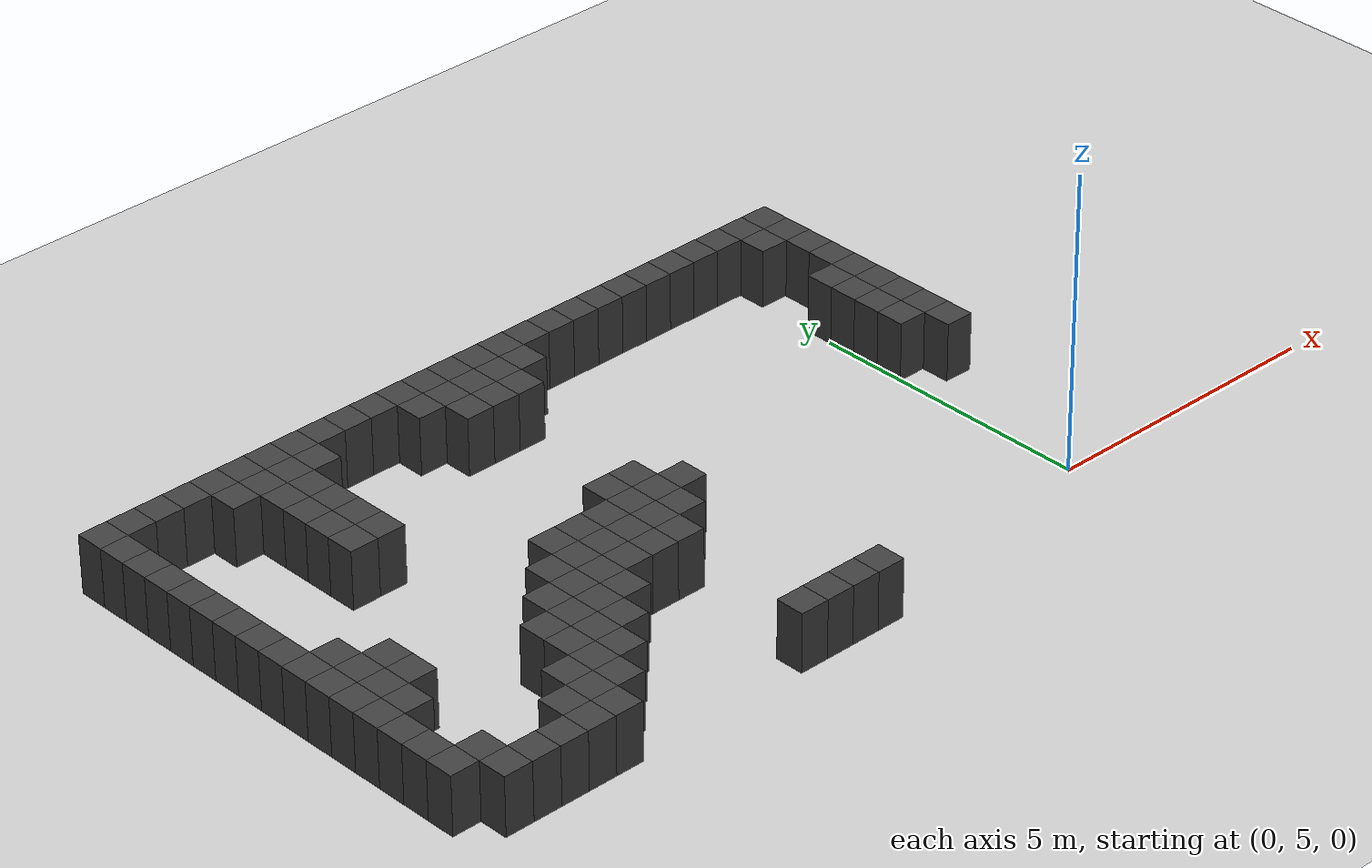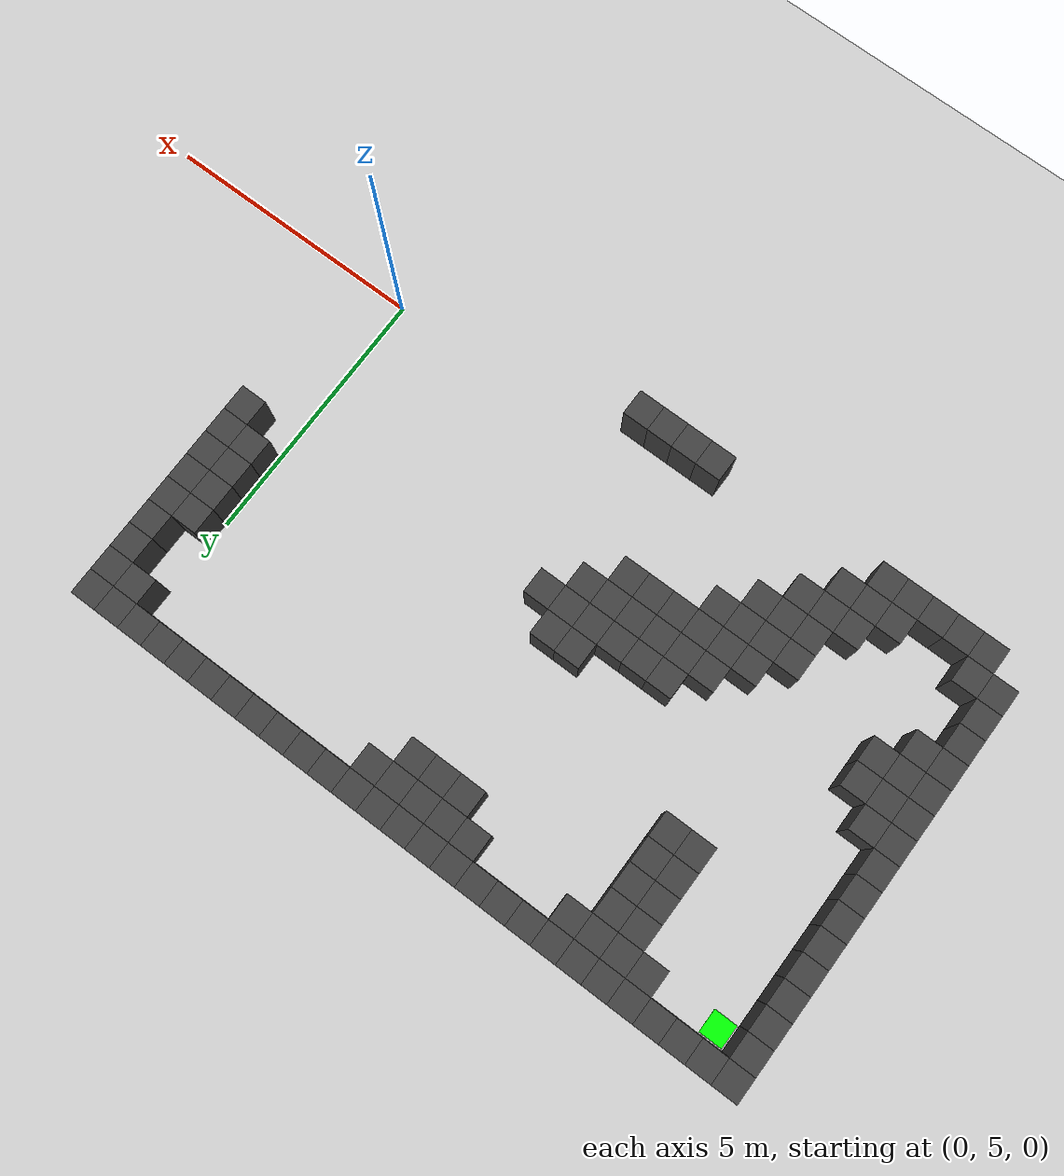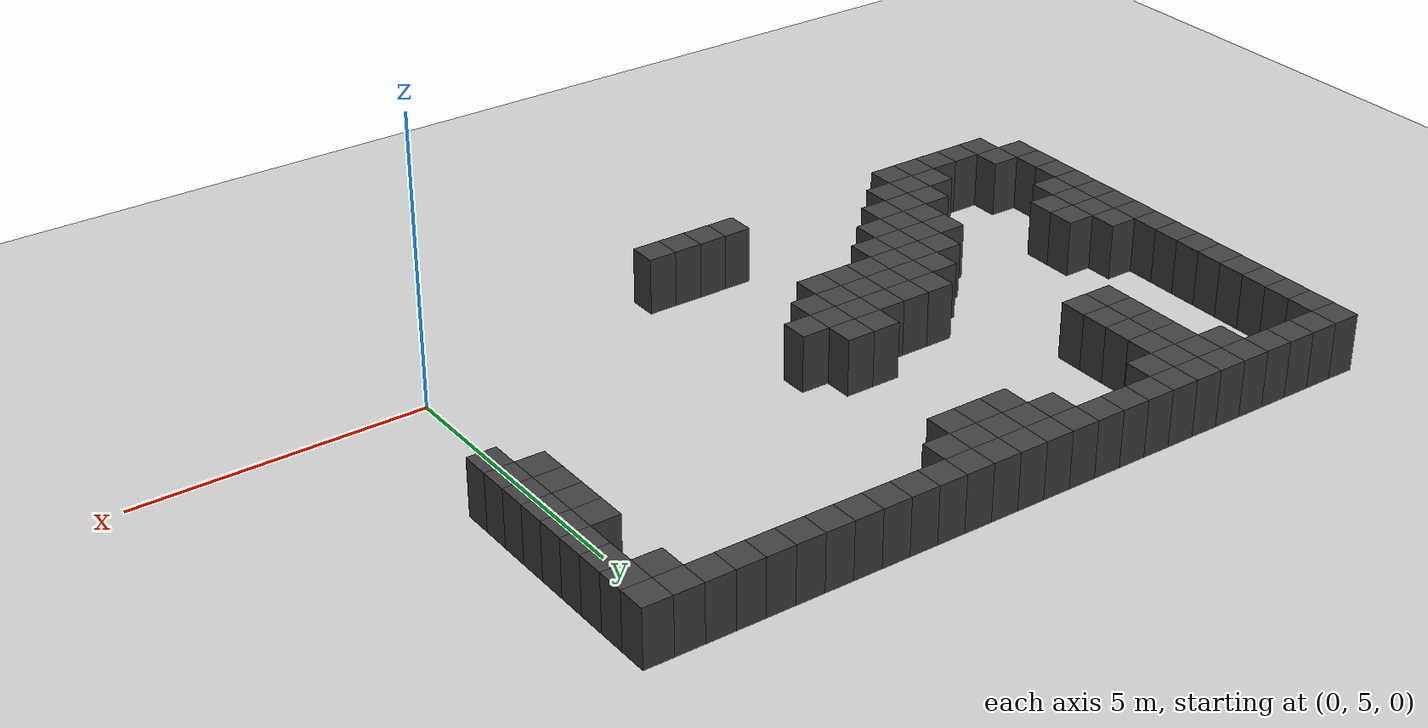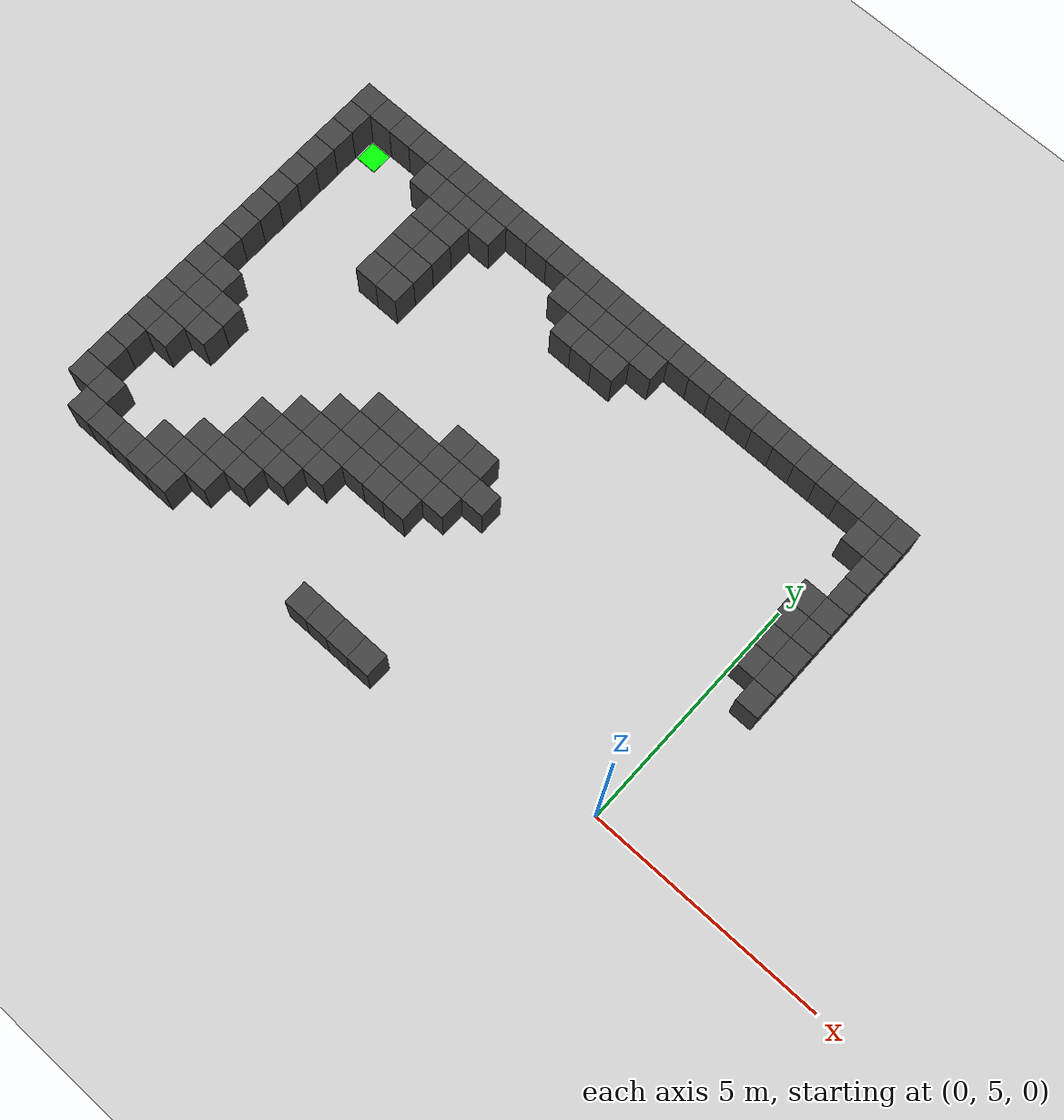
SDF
<sdf version="1.7">
 <world name="map_9687">
  <model name="ground_plane">
   <static>true</static>
   <link name="link">
    <collision name="collision">
     <geometry><plane><normal>0 0 1</normal><size>200 200</size></plane></geometry>
    </collision>
    <visual name="visual">
     <geometry><plane><normal>0 0 1</normal><size>200 200</size></plane></geometry>
     <material><ambient>0.8 0.8 0.8 1</ambient><diffuse>0.8 0.8 0.8 1</diffuse></material>
    </visual>
   </link>
  </model>
  <model name="maze_environment">
   <static>true</static>
   <link name="wall_0">
    <pose>-12.250 12.250 0.500 0 0 0</pose>
    <collision name="col"><geometry><box><size>0.5 0.5 1.0</size></box></geometry></collision>
    <visual name="vis">
     <geometry><box><size>0.5 0.5 1.0</size></box></geometry>
     <material><ambient>0.15 0.15 0.15 1</ambient><diffuse>0.25 0.25 0.25 1</diffuse></material>
    </visual>
   </link>
   <link name="wall_1">
    <pose>-11.750 12.250 0.500 0 0 0</pose>
    <collision name="col"><geometry><box><size>0.5 0.5 1.0</size></box></geometry></collision>
    <visual name="vis">
     <geometry><box><size>0.5 0.5 1.0</size></box></geometry>
     <material><ambient>0.15 0.15 0.15 1</ambient><diffuse>0.25 0.25 0.25 1</diffuse></material>
    </visual>
   </link>
   <link name="wall_2">
    <pose>-11.250 12.250 0.500 0 0 0</pose>
    <collision name="col"><geometry><box><size>0.5 0.5 1.0</size></box></geometry></collision>
    <visual name="vis">
     <geometry><box><size>0.5 0.5 1.0</size></box></geometry>
     <material><ambient>0.15 0.15 0.15 1</ambient><diffuse>0.25 0.25 0.25 1</diffuse></material>
    </visual>
   </link>
   <link name="wall_3">
    <pose>-10.750 12.250 0.500 0 0 0</pose>
    <collision name="col"><geometry><box><size>0.5 0.5 1.0</size></box></geometry></collision>
    <visual name="vis">
     <geometry><box><size>0.5 0.5 1.0</size></box></geometry>
     <material><ambient>0.15 0.15 0.15 1</ambient><diffuse>0.25 0.25 0.25 1</diffuse></material>
    </visual>
   </link>
   <link name="wall_4">
    <pose>-10.250 12.250 0.500 0 0 0</pose>
    <collision name="col"><geometry><box><size>0.5 0.5 1.0</size></box></geometry></collision>
    <visual name="vis">
     <geometry><box><size>0.5 0.5 1.0</size></box></geometry>
     <material><ambient>0.15 0.15 0.15 1</ambient><diffuse>0.25 0.25 0.25 1</diffuse></material>
    </visual>
   </link>
   <link name="wall_5">
    <pose>-9.750 12.250 0.500 0 0 0</pose>
    <collision name="col"><geometry><box><size>0.5 0.5 1.0</size></box></geometry></collision>
    <visual name="vis">
     <geometry><box><size>0.5 0.5 1.0</size></box></geometry>
     <material><ambient>0.15 0.15 0.15 1</ambient><diffuse>0.25 0.25 0.25 1</diffuse></material>
    </visual>
   </link>
   <link name="wall_6">
    <pose>-9.250 12.250 0.500 0 0 0</pose>
    <collision name="col"><geometry><box><size>0.5 0.5 1.0</size></box></geometry></collision>
    <visual name="vis">
     <geometry><box><size>0.5 0.5 1.0</size></box></geometry>
     <material><ambient>0.15 0.15 0.15 1</ambient><diffuse>0.25 0.25 0.25 1</diffuse></material>
    </visual>
   </link>
   <link name="wall_7">
    <pose>-8.750 12.250 0.500 0 0 0</pose>
    <collision name="col"><geometry><box><size>0.5 0.5 1.0</size></box></geometry></collision>
    <visual name="vis">
     <geometry><box><size>0.5 0.5 1.0</size></box></geometry>
     <material><ambient>0.15 0.15 0.15 1</ambient><diffuse>0.25 0.25 0.25 1</diffuse></material>
    </visual>
   </link>
   <link name="wall_8">
    <pose>-8.250 12.250 0.500 0 0 0</pose>
    <collision name="col"><geometry><box><size>0.5 0.5 1.0</size></box></geometry></collision>
    <visual name="vis">
     <geometry><box><size>0.5 0.5 1.0</size></box></geometry>
     <material><ambient>0.15 0.15 0.15 1</ambient><diffuse>0.25 0.25 0.25 1</diffuse></material>
    </visual>
   </link>
   <link name="wall_9">
    <pose>-7.750 12.250 0.500 0 0 0</pose>
    <collision name="col"><geometry><box><size>0.5 0.5 1.0</size></box></geometry></collision>
    <visual name="vis">
     <geometry><box><size>0.5 0.5 1.0</size></box></geometry>
     <material><ambient>0.15 0.15 0.15 1</ambient><diffuse>0.25 0.25 0.25 1</diffuse></material>
    </visual>
   </link>
   <link name="wall_10">
    <pose>-7.250 12.250 0.500 0 0 0</pose>
    <collision name="col"><geometry><box><size>0.5 0.5 1.0</size></box></geometry></collision>
    <visual name="vis">
     <geometry><box><size>0.5 0.5 1.0</size></box></geometry>
     <material><ambient>0.15 0.15 0.15 1</ambient><diffuse>0.25 0.25 0.25 1</diffuse></material>
    </visual>
   </link>
   <link name="wall_11">
    <pose>-6.750 12.250 0.500 0 0 0</pose>
    <collision name="col"><geometry><box><size>0.5 0.5 1.0</size></box></geometry></collision>
    <visual name="vis">
     <geometry><box><size>0.5 0.5 1.0</size></box></geometry>
     <material><ambient>0.15 0.15 0.15 1</ambient><diffuse>0.25 0.25 0.25 1</diffuse></material>
    </visual>
   </link>
   <link name="wall_12">
    <pose>-6.250 12.250 0.500 0 0 0</pose>
    <collision name="col"><geometry><box><size>0.5 0.5 1.0</size></box></geometry></collision>
    <visual name="vis">
     <geometry><box><size>0.5 0.5 1.0</size></box></geometry>
     <material><ambient>0.15 0.15 0.15 1</ambient><diffuse>0.25 0.25 0.25 1</diffuse></material>
    </visual>
   </link>
   <link name="wall_13">
    <pose>-5.750 12.250 0.500 0 0 0</pose>
    <collision name="col"><geometry><box><size>0.5 0.5 1.0</size></box></geometry></collision>
    <visual name="vis">
     <geometry><box><size>0.5 0.5 1.0</size></box></geometry>
     <material><ambient>0.15 0.15 0.15 1</ambient><diffuse>0.25 0.25 0.25 1</diffuse></material>
    </visual>
   </link>
   <link name="wall_14">
    <pose>-5.250 12.250 0.500 0 0 0</pose>
    <collision name="col"><geometry><box><size>0.5 0.5 1.0</size></box></geometry></collision>
    <visual name="vis">
     <geometry><box><size>0.5 0.5 1.0</size></box></geometry>
     <material><ambient>0.15 0.15 0.15 1</ambient><diffuse>0.25 0.25 0.25 1</diffuse></material>
    </visual>
   </link>
   <link name="wall_15">
    <pose>-4.750 12.250 0.500 0 0 0</pose>
    <collision name="col"><geometry><box><size>0.5 0.5 1.0</size></box></geometry></collision>
    <visual name="vis">
     <geometry><box><size>0.5 0.5 1.0</size></box></geometry>
     <material><ambient>0.15 0.15 0.15 1</ambient><diffuse>0.25 0.25 0.25 1</diffuse></material>
    </visual>
   </link>
   <link name="wall_16">
    <pose>-4.250 12.250 0.500 0 0 0</pose>
    <collision name="col"><geometry><box><size>0.5 0.5 1.0</size></box></geometry></collision>
    <visual name="vis">
     <geometry><box><size>0.5 0.5 1.0</size></box></geometry>
     <material><ambient>0.15 0.15 0.15 1</ambient><diffuse>0.25 0.25 0.25 1</diffuse></material>
    </visual>
   </link>
   <link name="wall_17">
    <pose>-3.750 12.250 0.500 0 0 0</pose>
    <collision name="col"><geometry><box><size>0.5 0.5 1.0</size></box></geometry></collision>
    <visual name="vis">
     <geometry><box><size>0.5 0.5 1.0</size></box></geometry>
     <material><ambient>0.15 0.15 0.15 1</ambient><diffuse>0.25 0.25 0.25 1</diffuse></material>
    </visual>
   </link>
   <link name="wall_18">
    <pose>-3.250 12.250 0.500 0 0 0</pose>
    <collision name="col"><geometry><box><size>0.5 0.5 1.0</size></box></geometry></collision>
    <visual name="vis">
     <geometry><box><size>0.5 0.5 1.0</size></box></geometry>
     <material><ambient>0.15 0.15 0.15 1</ambient><diffuse>0.25 0.25 0.25 1</diffuse></material>
    </visual>
   </link>
   <link name="wall_19">
    <pose>-2.750 12.250 0.500 0 0 0</pose>
    <collision name="col"><geometry><box><size>0.5 0.5 1.0</size></box></geometry></collision>
    <visual name="vis">
     <geometry><box><size>0.5 0.5 1.0</size></box></geometry>
     <material><ambient>0.15 0.15 0.15 1</ambient><diffuse>0.25 0.25 0.25 1</diffuse></material>
    </visual>
   </link>
   <link name="wall_20">
    <pose>-2.250 12.250 0.500 0 0 0</pose>
    <collision name="col"><geometry><box><size>0.5 0.5 1.0</size></box></geometry></collision>
    <visual name="vis">
     <geometry><box><size>0.5 0.5 1.0</size></box></geometry>
     <material><ambient>0.15 0.15 0.15 1</ambient><diffuse>0.25 0.25 0.25 1</diffuse></material>
    </visual>
   </link>
   <link name="wall_21">
    <pose>-1.750 12.250 0.500 0 0 0</pose>
    <collision name="col"><geometry><box><size>0.5 0.5 1.0</size></box></geometry></collision>
    <visual name="vis">
     <geometry><box><size>0.5 0.5 1.0</size></box></geometry>
     <material><ambient>0.15 0.15 0.15 1</ambient><diffuse>0.25 0.25 0.25 1</diffuse></material>
    </visual>
   </link>
   <link name="wall_22">
    <pose>-1.250 12.250 0.500 0 0 0</pose>
    <collision name="col"><geometry><box><size>0.5 0.5 1.0</size></box></geometry></collision>
    <visual name="vis">
     <geometry><box><size>0.5 0.5 1.0</size></box></geometry>
     <material><ambient>0.15 0.15 0.15 1</ambient><diffuse>0.25 0.25 0.25 1</diffuse></material>
    </visual>
   </link>
   <link name="wall_23">
    <pose>-0.750 12.250 0.500 0 0 0</pose>
    <collision name="col"><geometry><box><size>0.5 0.5 1.0</size></box></geometry></collision>
    <visual name="vis">
     <geometry><box><size>0.5 0.5 1.0</size></box></geometry>
     <material><ambient>0.15 0.15 0.15 1</ambient><diffuse>0.25 0.25 0.25 1</diffuse></material>
    </visual>
   </link>
   <link name="wall_24">
    <pose>-0.250 12.250 0.500 0 0 0</pose>
    <collision name="col"><geometry><box><size>0.5 0.5 1.0</size></box></geometry></collision>
    <visual name="vis">
     <geometry><box><size>0.5 0.5 1.0</size></box></geometry>
     <material><ambient>0.15 0.15 0.15 1</ambient><diffuse>0.25 0.25 0.25 1</diffuse></material>
    </visual>
   </link>
   <link name="wall_25">
    <pose>0.250 12.250 0.500 0 0 0</pose>
    <collision name="col"><geometry><box><size>0.5 0.5 1.0</size></box></geometry></collision>
    <visual name="vis">
     <geometry><box><size>0.5 0.5 1.0</size></box></geometry>
     <material><ambient>0.15 0.15 0.15 1</ambient><diffuse>0.25 0.25 0.25 1</diffuse></material>
    </visual>
   </link>
   <link name="wall_26">
    <pose>0.750 12.250 0.500 0 0 0</pose>
    <collision name="col"><geometry><box><size>0.5 0.5 1.0</size></box></geometry></collision>
    <visual name="vis">
     <geometry><box><size>0.5 0.5 1.0</size></box></geometry>
     <material><ambient>0.15 0.15 0.15 1</ambient><diffuse>0.25 0.25 0.25 1</diffuse></material>
    </visual>
   </link>
   <link name="wall_50">
    <pose>-12.250 11.750 0.500 0 0 0</pose>
    <collision name="col"><geometry><box><size>0.5 0.5 1.0</size></box></geometry></collision>
    <visual name="vis">
     <geometry><box><size>0.5 0.5 1.0</size></box></geometry>
     <material><ambient>0.15 0.15 0.15 1</ambient><diffuse>0.25 0.25 0.25 1</diffuse></material>
    </visual>
   </link>
   <link name="wall_51">
    <pose>-10.250 11.750 0.500 0 0 0</pose>
    <collision name="col"><geometry><box><size>0.5 0.5 1.0</size></box></geometry></collision>
    <visual name="vis">
     <geometry><box><size>0.5 0.5 1.0</size></box></geometry>
     <material><ambient>0.15 0.15 0.15 1</ambient><diffuse>0.25 0.25 0.25 1</diffuse></material>
    </visual>
   </link>
   <link name="wall_52">
    <pose>-9.750 11.750 0.500 0 0 0</pose>
    <collision name="col"><geometry><box><size>0.5 0.5 1.0</size></box></geometry></collision>
    <visual name="vis">
     <geometry><box><size>0.5 0.5 1.0</size></box></geometry>
     <material><ambient>0.15 0.15 0.15 1</ambient><diffuse>0.25 0.25 0.25 1</diffuse></material>
    </visual>
   </link>
   <link name="wall_53">
    <pose>-9.250 11.750 0.500 0 0 0</pose>
    <collision name="col"><geometry><box><size>0.5 0.5 1.0</size></box></geometry></collision>
    <visual name="vis">
     <geometry><box><size>0.5 0.5 1.0</size></box></geometry>
     <material><ambient>0.15 0.15 0.15 1</ambient><diffuse>0.25 0.25 0.25 1</diffuse></material>
    </visual>
   </link>
   <link name="wall_54">
    <pose>-8.750 11.750 0.500 0 0 0</pose>
    <collision name="col"><geometry><box><size>0.5 0.5 1.0</size></box></geometry></collision>
    <visual name="vis">
     <geometry><box><size>0.5 0.5 1.0</size></box></geometry>
     <material><ambient>0.15 0.15 0.15 1</ambient><diffuse>0.25 0.25 0.25 1</diffuse></material>
    </visual>
   </link>
   <link name="wall_55">
    <pose>-6.750 11.750 0.500 0 0 0</pose>
    <collision name="col"><geometry><box><size>0.5 0.5 1.0</size></box></geometry></collision>
    <visual name="vis">
     <geometry><box><size>0.5 0.5 1.0</size></box></geometry>
     <material><ambient>0.15 0.15 0.15 1</ambient><diffuse>0.25 0.25 0.25 1</diffuse></material>
    </visual>
   </link>
   <link name="wall_56">
    <pose>-6.250 11.750 0.500 0 0 0</pose>
    <collision name="col"><geometry><box><size>0.5 0.5 1.0</size></box></geometry></collision>
    <visual name="vis">
     <geometry><box><size>0.5 0.5 1.0</size></box></geometry>
     <material><ambient>0.15 0.15 0.15 1</ambient><diffuse>0.25 0.25 0.25 1</diffuse></material>
    </visual>
   </link>
   <link name="wall_57">
    <pose>-5.750 11.750 0.500 0 0 0</pose>
    <collision name="col"><geometry><box><size>0.5 0.5 1.0</size></box></geometry></collision>
    <visual name="vis">
     <geometry><box><size>0.5 0.5 1.0</size></box></geometry>
     <material><ambient>0.15 0.15 0.15 1</ambient><diffuse>0.25 0.25 0.25 1</diffuse></material>
    </visual>
   </link>
   <link name="wall_58">
    <pose>-5.250 11.750 0.500 0 0 0</pose>
    <collision name="col"><geometry><box><size>0.5 0.5 1.0</size></box></geometry></collision>
    <visual name="vis">
     <geometry><box><size>0.5 0.5 1.0</size></box></geometry>
     <material><ambient>0.15 0.15 0.15 1</ambient><diffuse>0.25 0.25 0.25 1</diffuse></material>
    </visual>
   </link>
   <link name="wall_59">
    <pose>-4.750 11.750 0.500 0 0 0</pose>
    <collision name="col"><geometry><box><size>0.5 0.5 1.0</size></box></geometry></collision>
    <visual name="vis">
     <geometry><box><size>0.5 0.5 1.0</size></box></geometry>
     <material><ambient>0.15 0.15 0.15 1</ambient><diffuse>0.25 0.25 0.25 1</diffuse></material>
    </visual>
   </link>
   <link name="wall_60">
    <pose>0.250 11.750 0.500 0 0 0</pose>
    <collision name="col"><geometry><box><size>0.5 0.5 1.0</size></box></geometry></collision>
    <visual name="vis">
     <geometry><box><size>0.5 0.5 1.0</size></box></geometry>
     <material><ambient>0.15 0.15 0.15 1</ambient><diffuse>0.25 0.25 0.25 1</diffuse></material>
    </visual>
   </link>
   <link name="wall_61">
    <pose>0.750 11.750 0.500 0 0 0</pose>
    <collision name="col"><geometry><box><size>0.5 0.5 1.0</size></box></geometry></collision>
    <visual name="vis">
     <geometry><box><size>0.5 0.5 1.0</size></box></geometry>
     <material><ambient>0.15 0.15 0.15 1</ambient><diffuse>0.25 0.25 0.25 1</diffuse></material>
    </visual>
   </link>
   <link name="wall_83">
    <pose>-12.250 11.250 0.500 0 0 0</pose>
    <collision name="col"><geometry><box><size>0.5 0.5 1.0</size></box></geometry></collision>
    <visual name="vis">
     <geometry><box><size>0.5 0.5 1.0</size></box></geometry>
     <material><ambient>0.15 0.15 0.15 1</ambient><diffuse>0.25 0.25 0.25 1</diffuse></material>
    </visual>
   </link>
   <link name="wall_84">
    <pose>-9.750 11.250 0.500 0 0 0</pose>
    <collision name="col"><geometry><box><size>0.5 0.5 1.0</size></box></geometry></collision>
    <visual name="vis">
     <geometry><box><size>0.5 0.5 1.0</size></box></geometry>
     <material><ambient>0.15 0.15 0.15 1</ambient><diffuse>0.25 0.25 0.25 1</diffuse></material>
    </visual>
   </link>
   <link name="wall_85">
    <pose>-9.250 11.250 0.500 0 0 0</pose>
    <collision name="col"><geometry><box><size>0.5 0.5 1.0</size></box></geometry></collision>
    <visual name="vis">
     <geometry><box><size>0.5 0.5 1.0</size></box></geometry>
     <material><ambient>0.15 0.15 0.15 1</ambient><diffuse>0.25 0.25 0.25 1</diffuse></material>
    </visual>
   </link>
   <link name="wall_86">
    <pose>-6.250 11.250 0.500 0 0 0</pose>
    <collision name="col"><geometry><box><size>0.5 0.5 1.0</size></box></geometry></collision>
    <visual name="vis">
     <geometry><box><size>0.5 0.5 1.0</size></box></geometry>
     <material><ambient>0.15 0.15 0.15 1</ambient><diffuse>0.25 0.25 0.25 1</diffuse></material>
    </visual>
   </link>
   <link name="wall_87">
    <pose>-5.750 11.250 0.500 0 0 0</pose>
    <collision name="col"><geometry><box><size>0.5 0.5 1.0</size></box></geometry></collision>
    <visual name="vis">
     <geometry><box><size>0.5 0.5 1.0</size></box></geometry>
     <material><ambient>0.15 0.15 0.15 1</ambient><diffuse>0.25 0.25 0.25 1</diffuse></material>
    </visual>
   </link>
   <link name="wall_88">
    <pose>-5.250 11.250 0.500 0 0 0</pose>
    <collision name="col"><geometry><box><size>0.5 0.5 1.0</size></box></geometry></collision>
    <visual name="vis">
     <geometry><box><size>0.5 0.5 1.0</size></box></geometry>
     <material><ambient>0.15 0.15 0.15 1</ambient><diffuse>0.25 0.25 0.25 1</diffuse></material>
    </visual>
   </link>
   <link name="wall_89">
    <pose>0.750 11.250 0.500 0 0 0</pose>
    <collision name="col"><geometry><box><size>0.5 0.5 1.0</size></box></geometry></collision>
    <visual name="vis">
     <geometry><box><size>0.5 0.5 1.0</size></box></geometry>
     <material><ambient>0.15 0.15 0.15 1</ambient><diffuse>0.25 0.25 0.25 1</diffuse></material>
    </visual>
   </link>
   <link name="wall_109">
    <pose>-12.250 10.750 0.500 0 0 0</pose>
    <collision name="col"><geometry><box><size>0.5 0.5 1.0</size></box></geometry></collision>
    <visual name="vis">
     <geometry><box><size>0.5 0.5 1.0</size></box></geometry>
     <material><ambient>0.15 0.15 0.15 1</ambient><diffuse>0.25 0.25 0.25 1</diffuse></material>
    </visual>
   </link>
   <link name="wall_110">
    <pose>-9.750 10.750 0.500 0 0 0</pose>
    <collision name="col"><geometry><box><size>0.5 0.5 1.0</size></box></geometry></collision>
    <visual name="vis">
     <geometry><box><size>0.5 0.5 1.0</size></box></geometry>
     <material><ambient>0.15 0.15 0.15 1</ambient><diffuse>0.25 0.25 0.25 1</diffuse></material>
    </visual>
   </link>
   <link name="wall_111">
    <pose>-9.250 10.750 0.500 0 0 0</pose>
    <collision name="col"><geometry><box><size>0.5 0.5 1.0</size></box></geometry></collision>
    <visual name="vis">
     <geometry><box><size>0.5 0.5 1.0</size></box></geometry>
     <material><ambient>0.15 0.15 0.15 1</ambient><diffuse>0.25 0.25 0.25 1</diffuse></material>
    </visual>
   </link>
   <link name="wall_112">
    <pose>0.750 10.750 0.500 0 0 0</pose>
    <collision name="col"><geometry><box><size>0.5 0.5 1.0</size></box></geometry></collision>
    <visual name="vis">
     <geometry><box><size>0.5 0.5 1.0</size></box></geometry>
     <material><ambient>0.15 0.15 0.15 1</ambient><diffuse>0.25 0.25 0.25 1</diffuse></material>
    </visual>
   </link>
   <link name="wall_131">
    <pose>-12.250 10.250 0.500 0 0 0</pose>
    <collision name="col"><geometry><box><size>0.5 0.5 1.0</size></box></geometry></collision>
    <visual name="vis">
     <geometry><box><size>0.5 0.5 1.0</size></box></geometry>
     <material><ambient>0.15 0.15 0.15 1</ambient><diffuse>0.25 0.25 0.25 1</diffuse></material>
    </visual>
   </link>
   <link name="wall_132">
    <pose>-9.750 10.250 0.500 0 0 0</pose>
    <collision name="col"><geometry><box><size>0.5 0.5 1.0</size></box></geometry></collision>
    <visual name="vis">
     <geometry><box><size>0.5 0.5 1.0</size></box></geometry>
     <material><ambient>0.15 0.15 0.15 1</ambient><diffuse>0.25 0.25 0.25 1</diffuse></material>
    </visual>
   </link>
   <link name="wall_133">
    <pose>-9.250 10.250 0.500 0 0 0</pose>
    <collision name="col"><geometry><box><size>0.5 0.5 1.0</size></box></geometry></collision>
    <visual name="vis">
     <geometry><box><size>0.5 0.5 1.0</size></box></geometry>
     <material><ambient>0.15 0.15 0.15 1</ambient><diffuse>0.25 0.25 0.25 1</diffuse></material>
    </visual>
   </link>
   <link name="wall_134">
    <pose>0.250 10.250 0.500 0 0 0</pose>
    <collision name="col"><geometry><box><size>0.5 0.5 1.0</size></box></geometry></collision>
    <visual name="vis">
     <geometry><box><size>0.5 0.5 1.0</size></box></geometry>
     <material><ambient>0.15 0.15 0.15 1</ambient><diffuse>0.25 0.25 0.25 1</diffuse></material>
    </visual>
   </link>
   <link name="wall_135">
    <pose>0.750 10.250 0.500 0 0 0</pose>
    <collision name="col"><geometry><box><size>0.5 0.5 1.0</size></box></geometry></collision>
    <visual name="vis">
     <geometry><box><size>0.5 0.5 1.0</size></box></geometry>
     <material><ambient>0.15 0.15 0.15 1</ambient><diffuse>0.25 0.25 0.25 1</diffuse></material>
    </visual>
   </link>
   <link name="wall_154">
    <pose>-12.250 9.750 0.500 0 0 0</pose>
    <collision name="col"><geometry><box><size>0.5 0.5 1.0</size></box></geometry></collision>
    <visual name="vis">
     <geometry><box><size>0.5 0.5 1.0</size></box></geometry>
     <material><ambient>0.15 0.15 0.15 1</ambient><diffuse>0.25 0.25 0.25 1</diffuse></material>
    </visual>
   </link>
   <link name="wall_155">
    <pose>-9.750 9.750 0.500 0 0 0</pose>
    <collision name="col"><geometry><box><size>0.5 0.5 1.0</size></box></geometry></collision>
    <visual name="vis">
     <geometry><box><size>0.5 0.5 1.0</size></box></geometry>
     <material><ambient>0.15 0.15 0.15 1</ambient><diffuse>0.25 0.25 0.25 1</diffuse></material>
    </visual>
   </link>
   <link name="wall_156">
    <pose>-9.250 9.750 0.500 0 0 0</pose>
    <collision name="col"><geometry><box><size>0.5 0.5 1.0</size></box></geometry></collision>
    <visual name="vis">
     <geometry><box><size>0.5 0.5 1.0</size></box></geometry>
     <material><ambient>0.15 0.15 0.15 1</ambient><diffuse>0.25 0.25 0.25 1</diffuse></material>
    </visual>
   </link>
   <link name="wall_157">
    <pose>0.250 9.750 0.500 0 0 0</pose>
    <collision name="col"><geometry><box><size>0.5 0.5 1.0</size></box></geometry></collision>
    <visual name="vis">
     <geometry><box><size>0.5 0.5 1.0</size></box></geometry>
     <material><ambient>0.15 0.15 0.15 1</ambient><diffuse>0.25 0.25 0.25 1</diffuse></material>
    </visual>
   </link>
   <link name="wall_158">
    <pose>0.750 9.750 0.500 0 0 0</pose>
    <collision name="col"><geometry><box><size>0.5 0.5 1.0</size></box></geometry></collision>
    <visual name="vis">
     <geometry><box><size>0.5 0.5 1.0</size></box></geometry>
     <material><ambient>0.15 0.15 0.15 1</ambient><diffuse>0.25 0.25 0.25 1</diffuse></material>
    </visual>
   </link>
   <link name="wall_174">
    <pose>-12.250 9.250 0.500 0 0 0</pose>
    <collision name="col"><geometry><box><size>0.5 0.5 1.0</size></box></geometry></collision>
    <visual name="vis">
     <geometry><box><size>0.5 0.5 1.0</size></box></geometry>
     <material><ambient>0.15 0.15 0.15 1</ambient><diffuse>0.25 0.25 0.25 1</diffuse></material>
    </visual>
   </link>
   <link name="wall_175">
    <pose>0.250 9.250 0.500 0 0 0</pose>
    <collision name="col"><geometry><box><size>0.5 0.5 1.0</size></box></geometry></collision>
    <visual name="vis">
     <geometry><box><size>0.5 0.5 1.0</size></box></geometry>
     <material><ambient>0.15 0.15 0.15 1</ambient><diffuse>0.25 0.25 0.25 1</diffuse></material>
    </visual>
   </link>
   <link name="wall_176">
    <pose>0.750 9.250 0.500 0 0 0</pose>
    <collision name="col"><geometry><box><size>0.5 0.5 1.0</size></box></geometry></collision>
    <visual name="vis">
     <geometry><box><size>0.5 0.5 1.0</size></box></geometry>
     <material><ambient>0.15 0.15 0.15 1</ambient><diffuse>0.25 0.25 0.25 1</diffuse></material>
    </visual>
   </link>
   <link name="wall_190">
    <pose>-12.250 8.750 0.500 0 0 0</pose>
    <collision name="col"><geometry><box><size>0.5 0.5 1.0</size></box></geometry></collision>
    <visual name="vis">
     <geometry><box><size>0.5 0.5 1.0</size></box></geometry>
     <material><ambient>0.15 0.15 0.15 1</ambient><diffuse>0.25 0.25 0.25 1</diffuse></material>
    </visual>
   </link>
   <link name="wall_191">
    <pose>0.250 8.750 0.500 0 0 0</pose>
    <collision name="col"><geometry><box><size>0.5 0.5 1.0</size></box></geometry></collision>
    <visual name="vis">
     <geometry><box><size>0.5 0.5 1.0</size></box></geometry>
     <material><ambient>0.15 0.15 0.15 1</ambient><diffuse>0.25 0.25 0.25 1</diffuse></material>
    </visual>
   </link>
   <link name="wall_192">
    <pose>0.750 8.750 0.500 0 0 0</pose>
    <collision name="col"><geometry><box><size>0.5 0.5 1.0</size></box></geometry></collision>
    <visual name="vis">
     <geometry><box><size>0.5 0.5 1.0</size></box></geometry>
     <material><ambient>0.15 0.15 0.15 1</ambient><diffuse>0.25 0.25 0.25 1</diffuse></material>
    </visual>
   </link>
   <link name="wall_201">
    <pose>-12.250 8.250 0.500 0 0 0</pose>
    <collision name="col"><geometry><box><size>0.5 0.5 1.0</size></box></geometry></collision>
    <visual name="vis">
     <geometry><box><size>0.5 0.5 1.0</size></box></geometry>
     <material><ambient>0.15 0.15 0.15 1</ambient><diffuse>0.25 0.25 0.25 1</diffuse></material>
    </visual>
   </link>
   <link name="wall_202">
    <pose>-6.250 8.250 0.500 0 0 0</pose>
    <collision name="col"><geometry><box><size>0.5 0.5 1.0</size></box></geometry></collision>
    <visual name="vis">
     <geometry><box><size>0.5 0.5 1.0</size></box></geometry>
     <material><ambient>0.15 0.15 0.15 1</ambient><diffuse>0.25 0.25 0.25 1</diffuse></material>
    </visual>
   </link>
   <link name="wall_203">
    <pose>-5.750 8.250 0.500 0 0 0</pose>
    <collision name="col"><geometry><box><size>0.5 0.5 1.0</size></box></geometry></collision>
    <visual name="vis">
     <geometry><box><size>0.5 0.5 1.0</size></box></geometry>
     <material><ambient>0.15 0.15 0.15 1</ambient><diffuse>0.25 0.25 0.25 1</diffuse></material>
    </visual>
   </link>
   <link name="wall_204">
    <pose>0.750 8.250 0.500 0 0 0</pose>
    <collision name="col"><geometry><box><size>0.5 0.5 1.0</size></box></geometry></collision>
    <visual name="vis">
     <geometry><box><size>0.5 0.5 1.0</size></box></geometry>
     <material><ambient>0.15 0.15 0.15 1</ambient><diffuse>0.25 0.25 0.25 1</diffuse></material>
    </visual>
   </link>
   <link name="wall_210">
    <pose>-12.250 7.750 0.500 0 0 0</pose>
    <collision name="col"><geometry><box><size>0.5 0.5 1.0</size></box></geometry></collision>
    <visual name="vis">
     <geometry><box><size>0.5 0.5 1.0</size></box></geometry>
     <material><ambient>0.15 0.15 0.15 1</ambient><diffuse>0.25 0.25 0.25 1</diffuse></material>
    </visual>
   </link>
   <link name="wall_211">
    <pose>-11.750 7.750 0.500 0 0 0</pose>
    <collision name="col"><geometry><box><size>0.5 0.5 1.0</size></box></geometry></collision>
    <visual name="vis">
     <geometry><box><size>0.5 0.5 1.0</size></box></geometry>
     <material><ambient>0.15 0.15 0.15 1</ambient><diffuse>0.25 0.25 0.25 1</diffuse></material>
    </visual>
   </link>
   <link name="wall_212">
    <pose>-7.750 7.750 0.500 0 0 0</pose>
    <collision name="col"><geometry><box><size>0.5 0.5 1.0</size></box></geometry></collision>
    <visual name="vis">
     <geometry><box><size>0.5 0.5 1.0</size></box></geometry>
     <material><ambient>0.15 0.15 0.15 1</ambient><diffuse>0.25 0.25 0.25 1</diffuse></material>
    </visual>
   </link>
   <link name="wall_213">
    <pose>-7.250 7.750 0.500 0 0 0</pose>
    <collision name="col"><geometry><box><size>0.5 0.5 1.0</size></box></geometry></collision>
    <visual name="vis">
     <geometry><box><size>0.5 0.5 1.0</size></box></geometry>
     <material><ambient>0.15 0.15 0.15 1</ambient><diffuse>0.25 0.25 0.25 1</diffuse></material>
    </visual>
   </link>
   <link name="wall_214">
    <pose>-6.750 7.750 0.500 0 0 0</pose>
    <collision name="col"><geometry><box><size>0.5 0.5 1.0</size></box></geometry></collision>
    <visual name="vis">
     <geometry><box><size>0.5 0.5 1.0</size></box></geometry>
     <material><ambient>0.15 0.15 0.15 1</ambient><diffuse>0.25 0.25 0.25 1</diffuse></material>
    </visual>
   </link>
   <link name="wall_215">
    <pose>-6.250 7.750 0.500 0 0 0</pose>
    <collision name="col"><geometry><box><size>0.5 0.5 1.0</size></box></geometry></collision>
    <visual name="vis">
     <geometry><box><size>0.5 0.5 1.0</size></box></geometry>
     <material><ambient>0.15 0.15 0.15 1</ambient><diffuse>0.25 0.25 0.25 1</diffuse></material>
    </visual>
   </link>
   <link name="wall_216">
    <pose>-5.750 7.750 0.500 0 0 0</pose>
    <collision name="col"><geometry><box><size>0.5 0.5 1.0</size></box></geometry></collision>
    <visual name="vis">
     <geometry><box><size>0.5 0.5 1.0</size></box></geometry>
     <material><ambient>0.15 0.15 0.15 1</ambient><diffuse>0.25 0.25 0.25 1</diffuse></material>
    </visual>
   </link>
   <link name="wall_217">
    <pose>-5.250 7.750 0.500 0 0 0</pose>
    <collision name="col"><geometry><box><size>0.5 0.5 1.0</size></box></geometry></collision>
    <visual name="vis">
     <geometry><box><size>0.5 0.5 1.0</size></box></geometry>
     <material><ambient>0.15 0.15 0.15 1</ambient><diffuse>0.25 0.25 0.25 1</diffuse></material>
    </visual>
   </link>
   <link name="wall_222">
    <pose>-12.250 7.250 0.500 0 0 0</pose>
    <collision name="col"><geometry><box><size>0.5 0.5 1.0</size></box></geometry></collision>
    <visual name="vis">
     <geometry><box><size>0.5 0.5 1.0</size></box></geometry>
     <material><ambient>0.15 0.15 0.15 1</ambient><diffuse>0.25 0.25 0.25 1</diffuse></material>
    </visual>
   </link>
   <link name="wall_223">
    <pose>-11.750 7.250 0.500 0 0 0</pose>
    <collision name="col"><geometry><box><size>0.5 0.5 1.0</size></box></geometry></collision>
    <visual name="vis">
     <geometry><box><size>0.5 0.5 1.0</size></box></geometry>
     <material><ambient>0.15 0.15 0.15 1</ambient><diffuse>0.25 0.25 0.25 1</diffuse></material>
    </visual>
   </link>
   <link name="wall_224">
    <pose>-11.250 7.250 0.500 0 0 0</pose>
    <collision name="col"><geometry><box><size>0.5 0.5 1.0</size></box></geometry></collision>
    <visual name="vis">
     <geometry><box><size>0.5 0.5 1.0</size></box></geometry>
     <material><ambient>0.15 0.15 0.15 1</ambient><diffuse>0.25 0.25 0.25 1</diffuse></material>
    </visual>
   </link>
   <link name="wall_225">
    <pose>-8.250 7.250 0.500 0 0 0</pose>
    <collision name="col"><geometry><box><size>0.5 0.5 1.0</size></box></geometry></collision>
    <visual name="vis">
     <geometry><box><size>0.5 0.5 1.0</size></box></geometry>
     <material><ambient>0.15 0.15 0.15 1</ambient><diffuse>0.25 0.25 0.25 1</diffuse></material>
    </visual>
   </link>
   <link name="wall_226">
    <pose>-7.750 7.250 0.500 0 0 0</pose>
    <collision name="col"><geometry><box><size>0.5 0.5 1.0</size></box></geometry></collision>
    <visual name="vis">
     <geometry><box><size>0.5 0.5 1.0</size></box></geometry>
     <material><ambient>0.15 0.15 0.15 1</ambient><diffuse>0.25 0.25 0.25 1</diffuse></material>
    </visual>
   </link>
   <link name="wall_227">
    <pose>-7.250 7.250 0.500 0 0 0</pose>
    <collision name="col"><geometry><box><size>0.5 0.5 1.0</size></box></geometry></collision>
    <visual name="vis">
     <geometry><box><size>0.5 0.5 1.0</size></box></geometry>
     <material><ambient>0.15 0.15 0.15 1</ambient><diffuse>0.25 0.25 0.25 1</diffuse></material>
    </visual>
   </link>
   <link name="wall_228">
    <pose>-6.750 7.250 0.500 0 0 0</pose>
    <collision name="col"><geometry><box><size>0.5 0.5 1.0</size></box></geometry></collision>
    <visual name="vis">
     <geometry><box><size>0.5 0.5 1.0</size></box></geometry>
     <material><ambient>0.15 0.15 0.15 1</ambient><diffuse>0.25 0.25 0.25 1</diffuse></material>
    </visual>
   </link>
   <link name="wall_229">
    <pose>-6.250 7.250 0.500 0 0 0</pose>
    <collision name="col"><geometry><box><size>0.5 0.5 1.0</size></box></geometry></collision>
    <visual name="vis">
     <geometry><box><size>0.5 0.5 1.0</size></box></geometry>
     <material><ambient>0.15 0.15 0.15 1</ambient><diffuse>0.25 0.25 0.25 1</diffuse></material>
    </visual>
   </link>
   <link name="wall_230">
    <pose>-5.750 7.250 0.500 0 0 0</pose>
    <collision name="col"><geometry><box><size>0.5 0.5 1.0</size></box></geometry></collision>
    <visual name="vis">
     <geometry><box><size>0.5 0.5 1.0</size></box></geometry>
     <material><ambient>0.15 0.15 0.15 1</ambient><diffuse>0.25 0.25 0.25 1</diffuse></material>
    </visual>
   </link>
   <link name="wall_235">
    <pose>-12.250 6.750 0.500 0 0 0</pose>
    <collision name="col"><geometry><box><size>0.5 0.5 1.0</size></box></geometry></collision>
    <visual name="vis">
     <geometry><box><size>0.5 0.5 1.0</size></box></geometry>
     <material><ambient>0.15 0.15 0.15 1</ambient><diffuse>0.25 0.25 0.25 1</diffuse></material>
    </visual>
   </link>
   <link name="wall_236">
    <pose>-11.750 6.750 0.500 0 0 0</pose>
    <collision name="col"><geometry><box><size>0.5 0.5 1.0</size></box></geometry></collision>
    <visual name="vis">
     <geometry><box><size>0.5 0.5 1.0</size></box></geometry>
     <material><ambient>0.15 0.15 0.15 1</ambient><diffuse>0.25 0.25 0.25 1</diffuse></material>
    </visual>
   </link>
   <link name="wall_237">
    <pose>-11.250 6.750 0.500 0 0 0</pose>
    <collision name="col"><geometry><box><size>0.5 0.5 1.0</size></box></geometry></collision>
    <visual name="vis">
     <geometry><box><size>0.5 0.5 1.0</size></box></geometry>
     <material><ambient>0.15 0.15 0.15 1</ambient><diffuse>0.25 0.25 0.25 1</diffuse></material>
    </visual>
   </link>
   <link name="wall_238">
    <pose>-8.750 6.750 0.500 0 0 0</pose>
    <collision name="col"><geometry><box><size>0.5 0.5 1.0</size></box></geometry></collision>
    <visual name="vis">
     <geometry><box><size>0.5 0.5 1.0</size></box></geometry>
     <material><ambient>0.15 0.15 0.15 1</ambient><diffuse>0.25 0.25 0.25 1</diffuse></material>
    </visual>
   </link>
   <link name="wall_239">
    <pose>-8.250 6.750 0.500 0 0 0</pose>
    <collision name="col"><geometry><box><size>0.5 0.5 1.0</size></box></geometry></collision>
    <visual name="vis">
     <geometry><box><size>0.5 0.5 1.0</size></box></geometry>
     <material><ambient>0.15 0.15 0.15 1</ambient><diffuse>0.25 0.25 0.25 1</diffuse></material>
    </visual>
   </link>
   <link name="wall_240">
    <pose>-7.750 6.750 0.500 0 0 0</pose>
    <collision name="col"><geometry><box><size>0.5 0.5 1.0</size></box></geometry></collision>
    <visual name="vis">
     <geometry><box><size>0.5 0.5 1.0</size></box></geometry>
     <material><ambient>0.15 0.15 0.15 1</ambient><diffuse>0.25 0.25 0.25 1</diffuse></material>
    </visual>
   </link>
   <link name="wall_241">
    <pose>-7.250 6.750 0.500 0 0 0</pose>
    <collision name="col"><geometry><box><size>0.5 0.5 1.0</size></box></geometry></collision>
    <visual name="vis">
     <geometry><box><size>0.5 0.5 1.0</size></box></geometry>
     <material><ambient>0.15 0.15 0.15 1</ambient><diffuse>0.25 0.25 0.25 1</diffuse></material>
    </visual>
   </link>
   <link name="wall_242">
    <pose>-6.750 6.750 0.500 0 0 0</pose>
    <collision name="col"><geometry><box><size>0.5 0.5 1.0</size></box></geometry></collision>
    <visual name="vis">
     <geometry><box><size>0.5 0.5 1.0</size></box></geometry>
     <material><ambient>0.15 0.15 0.15 1</ambient><diffuse>0.25 0.25 0.25 1</diffuse></material>
    </visual>
   </link>
   <link name="wall_243">
    <pose>-6.250 6.750 0.500 0 0 0</pose>
    <collision name="col"><geometry><box><size>0.5 0.5 1.0</size></box></geometry></collision>
    <visual name="vis">
     <geometry><box><size>0.5 0.5 1.0</size></box></geometry>
     <material><ambient>0.15 0.15 0.15 1</ambient><diffuse>0.25 0.25 0.25 1</diffuse></material>
    </visual>
   </link>
   <link name="wall_250">
    <pose>-12.250 6.250 0.500 0 0 0</pose>
    <collision name="col"><geometry><box><size>0.5 0.5 1.0</size></box></geometry></collision>
    <visual name="vis">
     <geometry><box><size>0.5 0.5 1.0</size></box></geometry>
     <material><ambient>0.15 0.15 0.15 1</ambient><diffuse>0.25 0.25 0.25 1</diffuse></material>
    </visual>
   </link>
   <link name="wall_251">
    <pose>-11.750 6.250 0.500 0 0 0</pose>
    <collision name="col"><geometry><box><size>0.5 0.5 1.0</size></box></geometry></collision>
    <visual name="vis">
     <geometry><box><size>0.5 0.5 1.0</size></box></geometry>
     <material><ambient>0.15 0.15 0.15 1</ambient><diffuse>0.25 0.25 0.25 1</diffuse></material>
    </visual>
   </link>
   <link name="wall_252">
    <pose>-9.250 6.250 0.500 0 0 0</pose>
    <collision name="col"><geometry><box><size>0.5 0.5 1.0</size></box></geometry></collision>
    <visual name="vis">
     <geometry><box><size>0.5 0.5 1.0</size></box></geometry>
     <material><ambient>0.15 0.15 0.15 1</ambient><diffuse>0.25 0.25 0.25 1</diffuse></material>
    </visual>
   </link>
   <link name="wall_253">
    <pose>-8.750 6.250 0.500 0 0 0</pose>
    <collision name="col"><geometry><box><size>0.5 0.5 1.0</size></box></geometry></collision>
    <visual name="vis">
     <geometry><box><size>0.5 0.5 1.0</size></box></geometry>
     <material><ambient>0.15 0.15 0.15 1</ambient><diffuse>0.25 0.25 0.25 1</diffuse></material>
    </visual>
   </link>
   <link name="wall_254">
    <pose>-8.250 6.250 0.500 0 0 0</pose>
    <collision name="col"><geometry><box><size>0.5 0.5 1.0</size></box></geometry></collision>
    <visual name="vis">
     <geometry><box><size>0.5 0.5 1.0</size></box></geometry>
     <material><ambient>0.15 0.15 0.15 1</ambient><diffuse>0.25 0.25 0.25 1</diffuse></material>
    </visual>
   </link>
   <link name="wall_255">
    <pose>-7.750 6.250 0.500 0 0 0</pose>
    <collision name="col"><geometry><box><size>0.5 0.5 1.0</size></box></geometry></collision>
    <visual name="vis">
     <geometry><box><size>0.5 0.5 1.0</size></box></geometry>
     <material><ambient>0.15 0.15 0.15 1</ambient><diffuse>0.25 0.25 0.25 1</diffuse></material>
    </visual>
   </link>
   <link name="wall_263">
    <pose>-12.250 5.750 0.500 0 0 0</pose>
    <collision name="col"><geometry><box><size>0.5 0.5 1.0</size></box></geometry></collision>
    <visual name="vis">
     <geometry><box><size>0.5 0.5 1.0</size></box></geometry>
     <material><ambient>0.15 0.15 0.15 1</ambient><diffuse>0.25 0.25 0.25 1</diffuse></material>
    </visual>
   </link>
   <link name="wall_264">
    <pose>-9.250 5.750 0.500 0 0 0</pose>
    <collision name="col"><geometry><box><size>0.5 0.5 1.0</size></box></geometry></collision>
    <visual name="vis">
     <geometry><box><size>0.5 0.5 1.0</size></box></geometry>
     <material><ambient>0.15 0.15 0.15 1</ambient><diffuse>0.25 0.25 0.25 1</diffuse></material>
    </visual>
   </link>
   <link name="wall_265">
    <pose>-8.750 5.750 0.500 0 0 0</pose>
    <collision name="col"><geometry><box><size>0.5 0.5 1.0</size></box></geometry></collision>
    <visual name="vis">
     <geometry><box><size>0.5 0.5 1.0</size></box></geometry>
     <material><ambient>0.15 0.15 0.15 1</ambient><diffuse>0.25 0.25 0.25 1</diffuse></material>
    </visual>
   </link>
   <link name="wall_266">
    <pose>-8.250 5.750 0.500 0 0 0</pose>
    <collision name="col"><geometry><box><size>0.5 0.5 1.0</size></box></geometry></collision>
    <visual name="vis">
     <geometry><box><size>0.5 0.5 1.0</size></box></geometry>
     <material><ambient>0.15 0.15 0.15 1</ambient><diffuse>0.25 0.25 0.25 1</diffuse></material>
    </visual>
   </link>
   <link name="wall_273">
    <pose>-12.250 5.250 0.500 0 0 0</pose>
    <collision name="col"><geometry><box><size>0.5 0.5 1.0</size></box></geometry></collision>
    <visual name="vis">
     <geometry><box><size>0.5 0.5 1.0</size></box></geometry>
     <material><ambient>0.15 0.15 0.15 1</ambient><diffuse>0.25 0.25 0.25 1</diffuse></material>
    </visual>
   </link>
   <link name="wall_274">
    <pose>-9.750 5.250 0.500 0 0 0</pose>
    <collision name="col"><geometry><box><size>0.5 0.5 1.0</size></box></geometry></collision>
    <visual name="vis">
     <geometry><box><size>0.5 0.5 1.0</size></box></geometry>
     <material><ambient>0.15 0.15 0.15 1</ambient><diffuse>0.25 0.25 0.25 1</diffuse></material>
    </visual>
   </link>
   <link name="wall_275">
    <pose>-9.250 5.250 0.500 0 0 0</pose>
    <collision name="col"><geometry><box><size>0.5 0.5 1.0</size></box></geometry></collision>
    <visual name="vis">
     <geometry><box><size>0.5 0.5 1.0</size></box></geometry>
     <material><ambient>0.15 0.15 0.15 1</ambient><diffuse>0.25 0.25 0.25 1</diffuse></material>
    </visual>
   </link>
   <link name="wall_276">
    <pose>-8.750 5.250 0.500 0 0 0</pose>
    <collision name="col"><geometry><box><size>0.5 0.5 1.0</size></box></geometry></collision>
    <visual name="vis">
     <geometry><box><size>0.5 0.5 1.0</size></box></geometry>
     <material><ambient>0.15 0.15 0.15 1</ambient><diffuse>0.25 0.25 0.25 1</diffuse></material>
    </visual>
   </link>
   <link name="wall_278">
    <pose>-12.250 4.750 0.500 0 0 0</pose>
    <collision name="col"><geometry><box><size>0.5 0.5 1.0</size></box></geometry></collision>
    <visual name="vis">
     <geometry><box><size>0.5 0.5 1.0</size></box></geometry>
     <material><ambient>0.15 0.15 0.15 1</ambient><diffuse>0.25 0.25 0.25 1</diffuse></material>
    </visual>
   </link>
   <link name="wall_279">
    <pose>-11.750 4.750 0.500 0 0 0</pose>
    <collision name="col"><geometry><box><size>0.5 0.5 1.0</size></box></geometry></collision>
    <visual name="vis">
     <geometry><box><size>0.5 0.5 1.0</size></box></geometry>
     <material><ambient>0.15 0.15 0.15 1</ambient><diffuse>0.25 0.25 0.25 1</diffuse></material>
    </visual>
   </link>
   <link name="wall_280">
    <pose>-10.250 4.750 0.500 0 0 0</pose>
    <collision name="col"><geometry><box><size>0.5 0.5 1.0</size></box></geometry></collision>
    <visual name="vis">
     <geometry><box><size>0.5 0.5 1.0</size></box></geometry>
     <material><ambient>0.15 0.15 0.15 1</ambient><diffuse>0.25 0.25 0.25 1</diffuse></material>
    </visual>
   </link>
   <link name="wall_281">
    <pose>-9.750 4.750 0.500 0 0 0</pose>
    <collision name="col"><geometry><box><size>0.5 0.5 1.0</size></box></geometry></collision>
    <visual name="vis">
     <geometry><box><size>0.5 0.5 1.0</size></box></geometry>
     <material><ambient>0.15 0.15 0.15 1</ambient><diffuse>0.25 0.25 0.25 1</diffuse></material>
    </visual>
   </link>
   <link name="wall_282">
    <pose>-9.250 4.750 0.500 0 0 0</pose>
    <collision name="col"><geometry><box><size>0.5 0.5 1.0</size></box></geometry></collision>
    <visual name="vis">
     <geometry><box><size>0.5 0.5 1.0</size></box></geometry>
     <material><ambient>0.15 0.15 0.15 1</ambient><diffuse>0.25 0.25 0.25 1</diffuse></material>
    </visual>
   </link>
   <link name="wall_287">
    <pose>-11.750 4.250 0.500 0 0 0</pose>
    <collision name="col"><geometry><box><size>0.5 0.5 1.0</size></box></geometry></collision>
    <visual name="vis">
     <geometry><box><size>0.5 0.5 1.0</size></box></geometry>
     <material><ambient>0.15 0.15 0.15 1</ambient><diffuse>0.25 0.25 0.25 1</diffuse></material>
    </visual>
   </link>
   <link name="wall_288">
    <pose>-11.250 4.250 0.500 0 0 0</pose>
    <collision name="col"><geometry><box><size>0.5 0.5 1.0</size></box></geometry></collision>
    <visual name="vis">
     <geometry><box><size>0.5 0.5 1.0</size></box></geometry>
     <material><ambient>0.15 0.15 0.15 1</ambient><diffuse>0.25 0.25 0.25 1</diffuse></material>
    </visual>
   </link>
   <link name="wall_289">
    <pose>-10.750 4.250 0.500 0 0 0</pose>
    <collision name="col"><geometry><box><size>0.5 0.5 1.0</size></box></geometry></collision>
    <visual name="vis">
     <geometry><box><size>0.5 0.5 1.0</size></box></geometry>
     <material><ambient>0.15 0.15 0.15 1</ambient><diffuse>0.25 0.25 0.25 1</diffuse></material>
    </visual>
   </link>
   <link name="wall_290">
    <pose>-10.250 4.250 0.500 0 0 0</pose>
    <collision name="col"><geometry><box><size>0.5 0.5 1.0</size></box></geometry></collision>
    <visual name="vis">
     <geometry><box><size>0.5 0.5 1.0</size></box></geometry>
     <material><ambient>0.15 0.15 0.15 1</ambient><diffuse>0.25 0.25 0.25 1</diffuse></material>
    </visual>
   </link>
   <link name="wall_291">
    <pose>-9.750 4.250 0.500 0 0 0</pose>
    <collision name="col"><geometry><box><size>0.5 0.5 1.0</size></box></geometry></collision>
    <visual name="vis">
     <geometry><box><size>0.5 0.5 1.0</size></box></geometry>
     <material><ambient>0.15 0.15 0.15 1</ambient><diffuse>0.25 0.25 0.25 1</diffuse></material>
    </visual>
   </link>
   <link name="wall_292">
    <pose>-6.250 4.250 0.500 0 0 0</pose>
    <collision name="col"><geometry><box><size>0.5 0.5 1.0</size></box></geometry></collision>
    <visual name="vis">
     <geometry><box><size>0.5 0.5 1.0</size></box></geometry>
     <material><ambient>0.15 0.15 0.15 1</ambient><diffuse>0.25 0.25 0.25 1</diffuse></material>
    </visual>
   </link>
   <link name="wall_293">
    <pose>-5.750 4.250 0.500 0 0 0</pose>
    <collision name="col"><geometry><box><size>0.5 0.5 1.0</size></box></geometry></collision>
    <visual name="vis">
     <geometry><box><size>0.5 0.5 1.0</size></box></geometry>
     <material><ambient>0.15 0.15 0.15 1</ambient><diffuse>0.25 0.25 0.25 1</diffuse></material>
    </visual>
   </link>
   <link name="wall_294">
    <pose>-5.250 4.250 0.500 0 0 0</pose>
    <collision name="col"><geometry><box><size>0.5 0.5 1.0</size></box></geometry></collision>
    <visual name="vis">
     <geometry><box><size>0.5 0.5 1.0</size></box></geometry>
     <material><ambient>0.15 0.15 0.15 1</ambient><diffuse>0.25 0.25 0.25 1</diffuse></material>
    </visual>
   </link>
   <link name="wall_295">
    <pose>-4.750 4.250 0.500 0 0 0</pose>
    <collision name="col"><geometry><box><size>0.5 0.5 1.0</size></box></geometry></collision>
    <visual name="vis">
     <geometry><box><size>0.5 0.5 1.0</size></box></geometry>
     <material><ambient>0.15 0.15 0.15 1</ambient><diffuse>0.25 0.25 0.25 1</diffuse></material>
    </visual>
   </link>
   <link name="start_zone">
    <pose>-11.750 11.750 0.005 0 0 0</pose>
    <visual name="vis">
     <geometry><box><size>0.45 0.45 0.01</size></box></geometry>
     <material>
      <ambient>0.0 1.0 0.0 1</ambient>
      <diffuse>0.0 1.0 0.0 1</diffuse>
      <emissive>0.00 0.60 0.00 1</emissive>
     </material>
    </visual>
   </link>
  </model>
 </world>
</sdf>
